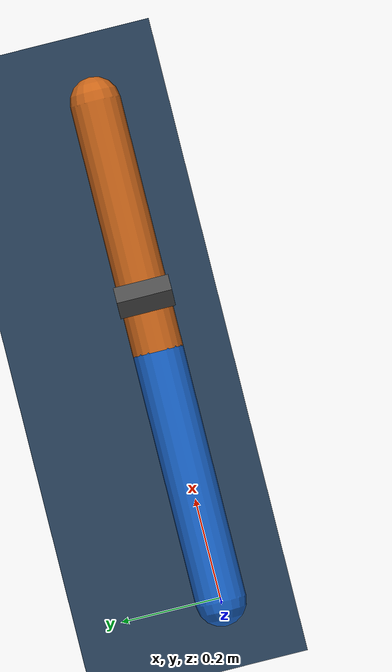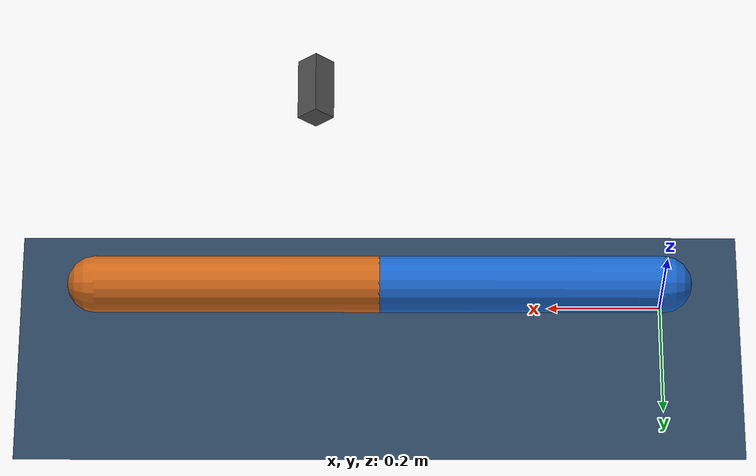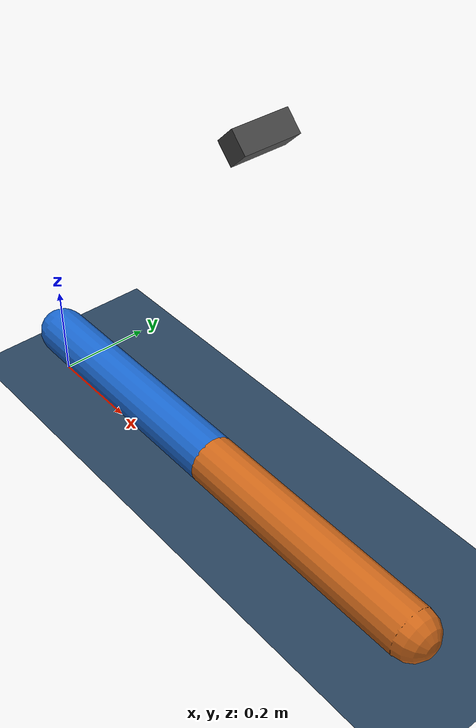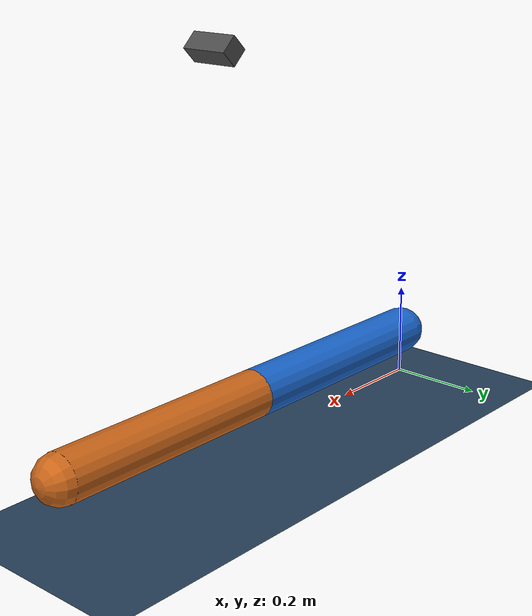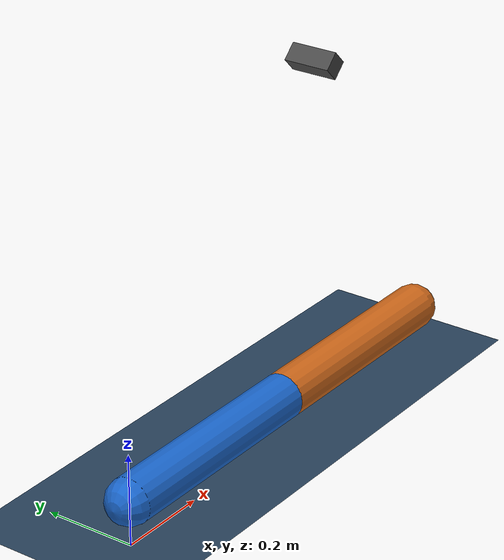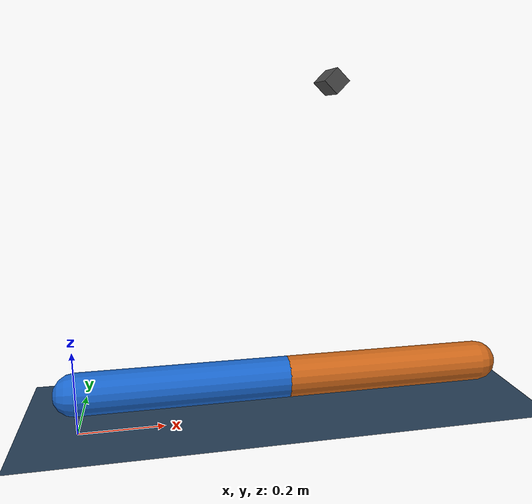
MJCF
<mujoco model="two_link_planar scene">

  <include file="two_link_planar.xml"/>

  <statistic center="0.2 0 0.2" extent="1.0"/>

  <visual>
    <headlight diffuse="0.6 0.6 0.6" ambient="0.3 0.3 0.3" specular="0 0 0"/>
    <rgba haze="0.15 0.25 0.35 1"/>
    <global azimuth="-120" elevation="-20"/>
  </visual>

  <asset>
    <texture type="skybox" builtin="gradient" rgb1="0.3 0.5 0.7" rgb2="0 0 0" width="512" height="512"/>
    <texture type="2d" name="groundplane" builtin="checker" mark="edge" rgb1="0.2 0.3 0.4" rgb2="0.1 0.2 0.3" markrgb="0.8 0.8 0.8" width="300" height="300"/>
    <material name="groundplane" texture="groundplane" texuniform="true" texrepeat="5 5"/>
  </asset>

  <worldbody>
    <light pos="0 0 1.5" dir="0 0 -1" directional="true"/>
    <geom name="floor" size="0 0 0.05" type="plane" material="groundplane"/>

    <body name="camera_link" pos="0.6 0.0 0.8" quat="0.924 0 0.383 0">
      <camera name="d435_camera" fovy="60" />
      <geom type="box" size="0.02 0.05 0.02" rgba="0.3 0.3 0.3 1" />
    </body>
  </worldbody>

  <sensor>
    <fixed_camera name="rgb_camera" camera="d435_camera"/>
  </sensor>

  <extension>
    <plugin name="mujoco_ros_sensors" filename="libmujoco_ros_sensors.so">
      <ros>
        <namespace>/</namespace>
        <remapping>rgb_camera/out/image_raw:=/camera/color/image_raw</remapping>
        <remapping>rgb_camera/out/camera_info:=/camera/color/camera_info</remapping>
      </ros>
    </plugin>
  </extension>

</mujoco>

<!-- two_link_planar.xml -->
<mujoco model="two_link_planar">
    <compiler angle="degree" coordinate="local"/>
    <option timestep="0.001" gravity="0 0 -9.81"/>

    <worldbody>

        <!-- Base of the robot -->
        <body name="base" pos="0 0 0.1">
            <!-- First joint and link -->
            <joint name="joint1" type="hinge" axis="0 0 1" limited="true" range="-180 180"/>
            <geom name="link1" type="capsule" fromto="0 0 0 0.5 0 0" size="0.05" rgba="0.1 0.4 0.8 1"/>

            <!-- Second joint and link -->
            <body name="link2_body" pos="0.5 0 0">
                <joint name="joint2" type="hinge" axis="0 0 1" limited="true" range="-180 180"/>
                <geom name="link2" type="capsule" fromto="0 0 0 0.5 0 0" size="0.05" rgba="0.8 0.4 0.1 1"/>

                <!-- End effector marker -->
                <site name="ee_site" pos="0.5 0 0" size="0.02" rgba="1 0 0 1"/>
            </body>
        </body>
    </worldbody>

    <actuator>
        <motor name="motor1" joint="joint1" ctrlrange="-10 10" ctrllimited="true"/>
        <motor name="motor2" joint="joint2" ctrlrange="-10 10" ctrllimited="true"/>
    </actuator>
</mujoco>
